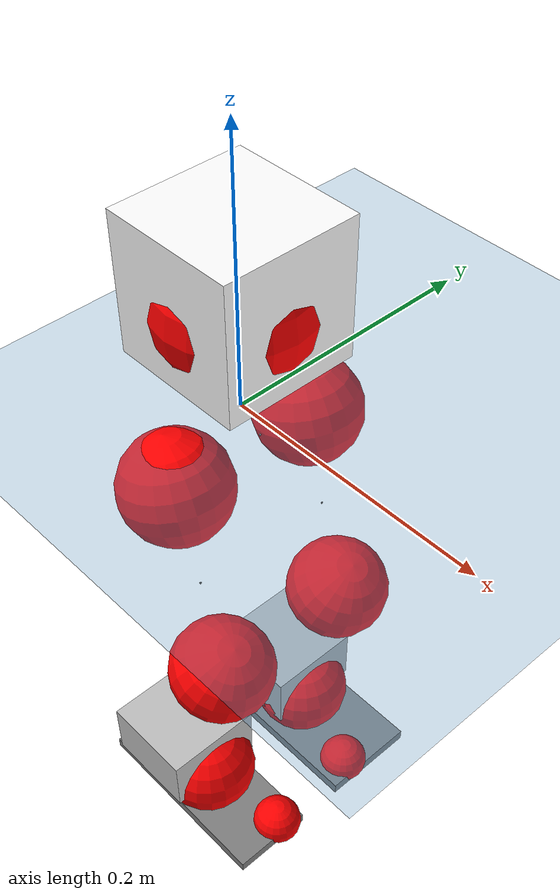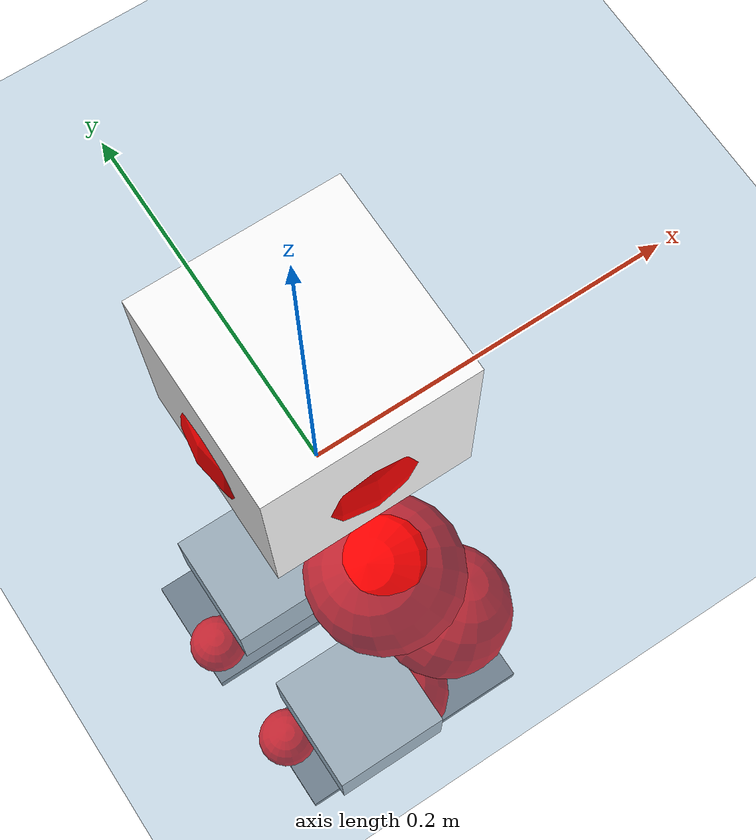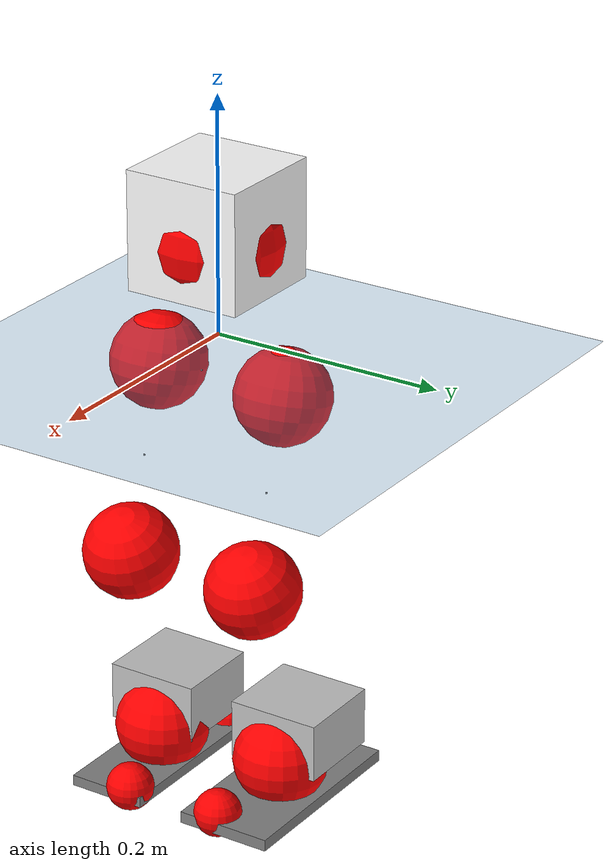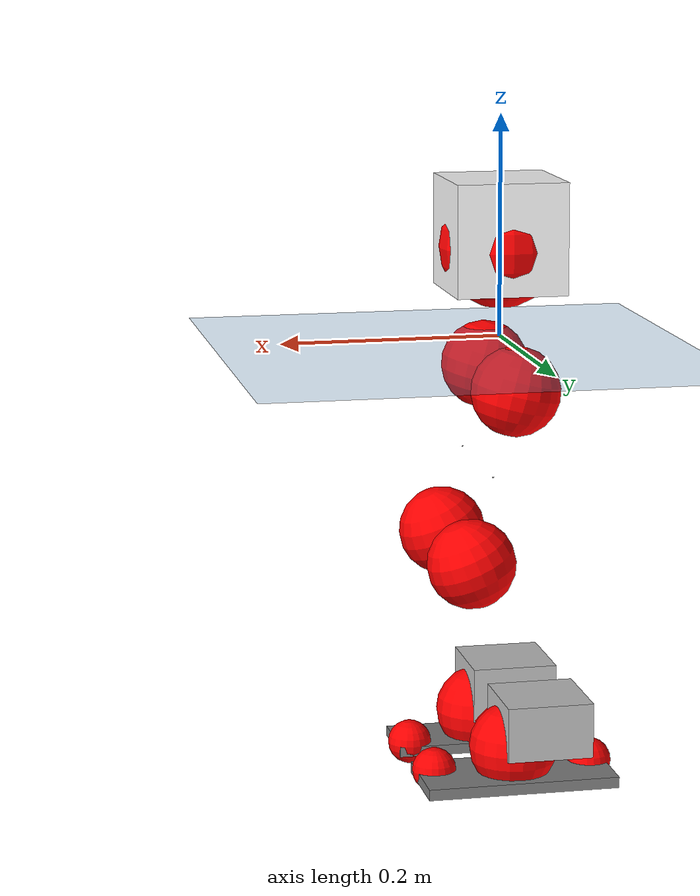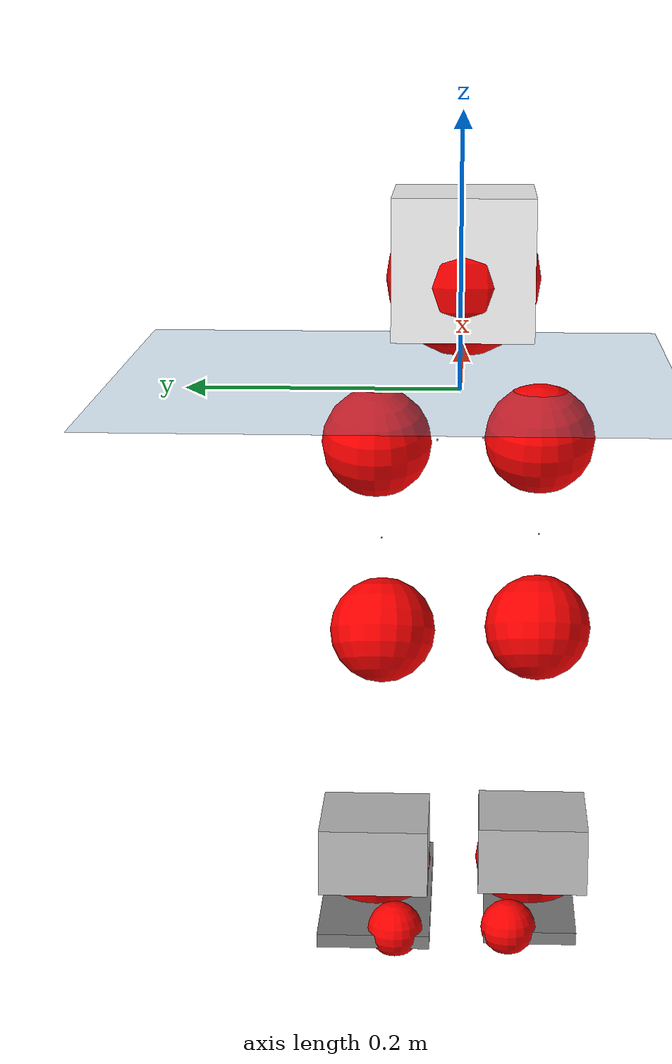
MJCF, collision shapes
<mujoco model="pi_12dof_release_v1">
  <compiler angle="radian" assetdir="assets" balanceinertia="true" inertiafromgeom="false"/>

  <option timestep="0.005" density="1.2" viscosity="2e-05"/>

  <size nkey="1"/>

  <visual>
    <quality shadowsize="8192"/>
    <map shadowclip="0.5"/>
  </visual>

  <default>
    <default class="/">
      <joint armature="0.01" damping="0.01" frictionloss="0.01"/>
      <geom contype="0" conaffinity="0" group="1" solref="-1000 -80"/>
      <site size="0.01 0.005 0.005" group="5"/>
      <general forcelimited="true" biastype="affine" gainprm="20" biasprm="0 -20 -0.5"/>
      <default class="foot">
        <geom size="0.0845 0.036 0.005" type="box" condim="6" group="4" priority="1" friction="0.9 0.2 0.2" solimp="0.015 1 0.005"/>
      </default>
      <default class="reward_collision_sphere">
        <geom group="5" rgba="1 0 0 1"/>
      </default>
    </default>
  </default>

  <asset>
    <texture type="skybox" colorspace="auto" name="//unnamed_texture_0" builtin="gradient" rgb1="0.95 0.95 0.95" rgb2="0.95 0.95 0.95" width="100" height="600"/>
    <texture type="2d" colorspace="auto" name="texplane" builtin="checker" rgb1="0.345 0.575 0.748" rgb2="0.345 0.575 0.748" markrgb="1 1 1" width="512" height="512"/>
    <material name="MatPlane" class="/" texture="texplane" texuniform="true" texrepeat="2 2" specular="0.9"/>
    <mesh name="baselink_1" class="/" file="baselink_1.STL"/>
    <mesh name="r_hip_pitch_link" class="/" file="r_hip_pitch_link.STL"/>
    <mesh name="r_hip_roll_link" class="/" file="r_hip_roll_link.STL"/>
    <mesh name="r_thigh_link" class="/" file="r_thigh_link.STL"/>
    <mesh name="r_calf_link" class="/" file="r_calf_link.STL"/>
    <mesh name="r_ankle_pitch_link" class="/" file="r_ankle_pitch_link.STL"/>
    <mesh name="r_ankle_roll_link" class="/" file="r_ankle_roll_link.STL"/>
    <mesh name="l_hip_pitch_link" class="/" file="l_hip_pitch_link.STL"/>
    <mesh name="l_hip_roll_link" class="/" file="l_hip_roll_link.STL"/>
    <mesh name="l_thigh_link" class="/" file="l_thigh_link.STL"/>
    <mesh name="l_calf_link" class="/" file="l_calf_link.STL"/>
    <mesh name="l_ankle_pitch_link" class="/" file="l_ankle_pitch_link.STL"/>
    <mesh name="l_ankle_roll_link" class="/" file="l_ankle_roll_link.STL"/>
  </asset>

  <worldbody>
    <geom name="floor" class="/" size="100 100 0.125" type="plane" group="0" material="MatPlane"/>
    <light name="toplight_shadow" class="/" pos="0 0 5" dir="0.0990148 0.0990148 -0.990148" type="directional" ambient="0.04 0.04 0.04" diffuse="0.55 0.55 0.55" specular="0.12 0.12 0.12"/>
    <light name="toplight_fill" class="/" pos="0 0 5" dir="0.0990148 0.0990148 -0.990148" type="directional" castshadow="false" ambient="0.04 0.04 0.04" diffuse="0.3 0.3 0.3" specular="0.08 0.08 0.08"/>
    <body name="trunk" pos="-9.71657e-05 -0.0013161 0.000548355" quat="1 -2.77673e-05 -2.50079e-05 -6.84236e-06">
      <inertial pos="0.00138296 -0.002339 0.0464692" quat="0.688861 0.00815784 0.0185828 0.724609" mass="2.17924" diaginertia="0.0140984 0.00274523 0.00850221"/>
      <joint name="//unnamed_joint_0" type="free"/>
      <geom name="//unnamed_geom_1" class="/" type="mesh" density="0" rgba="1 1 1 1" mesh="baselink_1"/>
      <geom name="//unnamed_geom_2" class="/" size="0.0502814 0.0502814 0.0502814" pos="0 0 0.0923438" type="box" rgba="1 1 1 1"/>
      <geom name="//unnamed_geom_3" class="reward_collision_sphere" size="0.0553095" pos="0 0 0.0808009"/>
      <site name="imu" class="/" pos="0.00576693 -0.000487371 -0.00652905" size="0.0100563"/>
      <camera name="track" class="/" pos="0 -1.57636 0" quat="0.707107 0.707107 0 0" mode="trackcom"/>
      <camera name="ego_camera" class="/" pos="0.0805803 0 0.207774" quat="-0.5 -0.5 0.5 0.5"/>
      <body name="r_hip_pitch_link" pos="0.000192261 -0.0153798 -0.0357751" quat="0.992158 4.59933e-05 -0.124988 -0.000595638">
        <inertial pos="0.000686272 -0.0441267 -2.73841e-05" quat="-0.0183213 0.706573 -0.0304959 0.706745" mass="0.371096" diaginertia="0.000155221 2.92779e-05 0.000171392"/>
        <joint name="r_hip_pitch_joint" class="/" pos="0 0 0" axis="-0.00640234 -0.999973 0.00355097" stiffness="0.00070006" range="-1.74663 1.25228" armature="0.00993811" damping="0.0146333" frictionloss="0.0104543"/>
        <geom name="//unnamed_geom_4" class="/" type="mesh" density="0" rgba="0.75294 0.75294 0.75294 1" mesh="r_hip_pitch_link"/>
        <geom name="//unnamed_geom_5" class="/" size="0.000502814 0.000502814 0.000502814" type="box" rgba="0.75294 0.75294 0.75294 1"/>
        <body name="r_hip_roll_link" pos="0.000490451 -0.0413882 -0.000197171" quat="1 -0.000185958 -0.000230249 -0.000422607">
          <inertial pos="8.89475e-05 -7.44241e-05 -0.0704199" quat="0.701382 -0.0845881 -0.0780358 0.703433" mass="0.395637" diaginertia="0.000483565 8.48285e-05 0.00026762"/>
          <joint name="r_hip_roll_joint" class="/" pos="0 0 0" axis="-0.999999 0.000559803 0.00141129" stiffness="0.00270251" range="-0.114816 0.528843" armature="0.00972293" damping="0.0067678" frictionloss="0.00981242"/>
          <geom name="//unnamed_geom_6" class="/" type="mesh" density="0" rgba="0.75294 0.75294 0.75294 1" mesh="r_hip_roll_link"/>
          <geom name="//unnamed_geom_7" class="/" size="0.000502814 0.000502814 0.000502814" type="box" rgba="0.75294 0.75294 0.75294 1"/>
          <geom name="//unnamed_geom_8" class="reward_collision_sphere" size="0.0402251"/>
          <body name="r_thigh_link" pos="0.000206019 -0.00154485 -0.07978" quat="1 6.4266e-07 -4.93223e-06 -1.59215e-05">
            <inertial pos="0.00129105 0.000798713 -0.0572648" quat="0.737678 0.675153 -0.000307773 8.50559e-05" mass="0.11416" diaginertia="0.000176247 2.96506e-05 0.000115147"/>
            <joint name="r_thigh_joint" class="/" pos="0 0 0" axis="-0.000525716 -0.00361291 -0.999993" range="-0.317548 0.597786" armature="0.0104788" damping="0.00703863" frictionloss="0.00990372"/>
            <geom name="//unnamed_geom_9" class="/" type="mesh" density="0" rgba="0.75294 0.75294 0.75294 1" mesh="r_thigh_link"/>
            <geom name="//unnamed_geom_10" class="/" size="0.000502814 0.000502814 0.000502814" type="box" rgba="0.75294 0.75294 0.75294 1"/>
            <body name="r_calf_link" pos="-0.000881181 -0.00081594 -0.0810614" quat="0.947664 -6.27823e-05 0.319269 -2.31445e-05">
              <inertial pos="0.000549453 -0.00154353 -0.0813056" quat="0.999983 -0.00355773 -0.00193343 0.00428687" mass="0.812877" diaginertia="0.00514057 0.00103754 0.000366792"/>
              <joint name="r_calf_joint" class="/" pos="0 0 0" axis="0.000496811 -1 0.000339048" range="-1.59976 0.641098" armature="0.0104692" damping="0.0102619" frictionloss="0.00980295"/>
              <geom name="//unnamed_geom_11" class="/" type="mesh" density="0" rgba="0.75294 0.75294 0.75294 1" mesh="r_calf_link"/>
              <geom name="//unnamed_geom_12" class="/" size="0.000502814 0.000502814 0.000502814" type="box" rgba="0.75294 0.75294 0.75294 1"/>
              <geom name="//unnamed_geom_13" class="reward_collision_sphere" size="0.0402251"/>
              <body name="r_ankle_pitch_link" pos="0.0027902 0.00293055 -0.162114" quat="0.980051 -0.000396989 -0.198744 0.000137775">
                <inertial pos="0.00549381 0.000373839 -0.000749828" quat="0.00240202 0.70728 -0.00165476 0.706927" mass="0.184638" diaginertia="0.000452778 6.89768e-05 0.000253729"/>
                <joint name="r_ankle_pitch_joint" class="/" pos="0 0 0" axis="0.0107048 -0.999918 -0.00707539" range="-1.30997 0.546865" armature="0.0102066" damping="0.0119779" frictionloss="0.0105676"/>
                <geom name="//unnamed_geom_14" class="/" type="mesh" density="0" rgba="0.75294 0.75294 0.75294 1" mesh="r_ankle_pitch_link"/>
                <geom name="//unnamed_geom_15" class="/" size="0.0392195 0.0402251 0.0251407" type="box" rgba="0.75294 0.75294 0.75294 1"/>
                <body name="r_ankle_roll_link" pos="0.0796387 0.00190663 -0.000679361" quat="1 -0.000125188 0.000740779 -0.000628724">
                  <inertial pos="-0.0265986 -0.000267868 -0.0160574" quat="0.559168 0.430683 0.434104 0.559818" mass="0.530828" diaginertia="0.00160662 0.000314356 0.000572649"/>
                  <joint name="r_ankle_roll_joint" class="/" pos="0 0 0" axis="-1 -8.85317e-05 9.13995e-05" range="-0.199176 0.144201" armature="0.00999636" damping="0.013659" frictionloss="0.0102662"/>
                  <geom name="//unnamed_geom_16" class="/" type="mesh" density="0" rgba="0.75294 0.75294 0.75294 1" mesh="r_ankle_roll_link"/>
                  <geom name="//unnamed_geom_17" class="/" type="mesh" rgba="0.75294 0.75294 0.75294 1" mesh="r_ankle_roll_link"/>
                  <geom name="right_foot" class="foot" size="0.0830724 0.0339032 0.00460206" pos="-0.0547946 0 -0.0507891"/>
                  <geom name="//unnamed_geom_19" class="reward_collision_sphere" size="0.0402251" pos="-0.0537202 0 -0.023086"/>
                  <geom name="//unnamed_geom_20" class="reward_collision_sphere" size="0.0201126" pos="0.0161161 0.0157636 -0.0461719"/>
                  <geom name="//unnamed_geom_21" class="reward_collision_sphere" size="0.0201126" pos="-0.128929 0.0157636 -0.0461719"/>
                  <site name="right_foot" class="foot" pos="-0.0547946 0 -0.0507891" size="0.0100563"/>
                </body>
              </body>
            </body>
          </body>
        </body>
      </body>
      <body name="l_hip_pitch_link" pos="-0.000593844 0.0178387 -0.0375136" quat="0.992255 3.83682e-05 -0.124219 0.000277262">
        <inertial pos="0.000523843 0.0406236 -0.000895434" quat="-0.0421795 0.705477 0.0329155 0.70671" mass="0.387115" diaginertia="0.000182233 3.16039e-05 0.000204328"/>
        <joint name="l_hip_pitch_joint" class="/" pos="0 0 0" axis="0.00187213 0.999998 0.000169908" stiffness="0.00337429" range="-1.24346 1.75637" armature="0.00983267" damping="0" frictionloss="0.0103572"/>
        <geom name="//unnamed_geom_22" class="/" type="mesh" density="0" rgba="0.75294 0.75294 0.75294 1" mesh="l_hip_pitch_link"/>
        <geom name="//unnamed_geom_23" class="/" size="0.000502814 0.000502814 0.000502814" type="box" rgba="0.75294 0.75294 0.75294 1"/>
        <body name="l_hip_roll_link" pos="0.000207269 0.0441792 -0.00223012" quat="1 -0.00016975 5.19917e-05 7.57111e-05">
          <inertial pos="-0.00115541 -0.000564857 -0.0728486" quat="0.699256 -0.0752805 -0.0779529 0.70661" mass="0.402548" diaginertia="0.000476191 8.24575e-05 0.00025824"/>
          <joint name="l_hip_roll_joint" class="/" pos="0 0 0" axis="-0.999991 0.000678978 -0.0042468" range="-0.547017 0.114388" armature="0.0108349" damping="0.00546935" frictionloss="0.00954991"/>
          <geom name="//unnamed_geom_24" class="/" type="mesh" density="0" rgba="0.75294 0.75294 0.75294 1" mesh="l_hip_roll_link"/>
          <geom name="//unnamed_geom_25" class="/" size="0.000502814 0.000502814 0.000502814" type="box" rgba="0.75294 0.75294 0.75294 1"/>
          <geom name="//unnamed_geom_26" class="reward_collision_sphere" size="0.0402251"/>
          <body name="l_thigh_link" pos="-0.000229787 -0.00285559 -0.0797675" quat="1 0.000207307 -0.00026259 7.5266e-05">
            <inertial pos="0.000326453 -0.00157591 -0.0539929" quat="0.675939 0.736955 -2.49933e-05 -0.00162973" mass="0.115096" diaginertia="0.000183532 2.87061e-05 0.00011877"/>
            <joint name="l_thigh_joint" class="/" pos="0 0 0" axis="-0.00037461 -0.000543639 -1" range="-0.596181 0.299601" armature="0.00991484" damping="0.00345591" frictionloss="0.0100302"/>
            <geom name="//unnamed_geom_27" class="/" type="mesh" density="0" rgba="0.75294 0.75294 0.75294 1" mesh="l_thigh_link"/>
            <geom name="//unnamed_geom_28" class="/" size="0.000502814 0.000502814 0.000502814" type="box" rgba="0.75294 0.75294 0.75294 1"/>
            <body name="l_calf_link" pos="-0.000485604 2.46003e-05 -0.0806616" quat="0.947477 0.000419195 0.319823 -0.000542068">
              <inertial pos="-0.000630328 0.00406586 -0.0819164" quat="0.999973 0.00508885 -0.00342387 0.00404216" mass="0.829205" diaginertia="0.00511079 0.00105018 0.00036737"/>
              <joint name="l_calf_joint" class="/" pos="0 0 0" axis="0.00116338 0.999998 0.00173222" range="-0.662638 1.67162" armature="0.00952681" damping="0.00365988" frictionloss="0.0095336"/>
              <geom name="//unnamed_geom_29" class="/" type="mesh" density="0" rgba="0.75294 0.75294 0.75294 1" mesh="l_calf_link"/>
              <geom name="//unnamed_geom_30" class="/" size="0.000502814 0.000502814 0.000502814" type="box" rgba="0.75294 0.75294 0.75294 1"/>
              <geom name="//unnamed_geom_31" class="reward_collision_sphere" size="0.0402251"/>
              <body name="l_ankle_pitch_link" pos="-0.000292833 0.00252409 -0.162026" quat="0.979924 -0.000740689 -0.199367 0.000413995">
                <inertial pos="0.0053925 -0.00273648 -0.000287138" quat="-0.00109177 0.705533 0.000763301 0.708676" mass="0.179301" diaginertia="0.000442951 6.73639e-05 0.00024533"/>
                <joint name="l_ankle_pitch_joint" class="/" pos="0 0 0" axis="-0.00152312 0.999998 -0.00115866" stiffness="0.000793293" range="-0.538953 1.31413" armature="0.0103049" damping="0.0038427" frictionloss="0.0100772"/>
                <geom name="//unnamed_geom_32" class="/" type="mesh" density="0" rgba="0.75294 0.75294 0.75294 1" mesh="l_ankle_pitch_link"/>
                <geom name="//unnamed_geom_33" class="/" size="0.0392195 0.0402251 0.0251407" type="box" rgba="0.75294 0.75294 0.75294 1"/>
                <body name="l_ankle_roll_link" pos="0.0783844 -0.00122691 0.000708862" quat="1 -9.36342e-05 -0.000256971 -0.000177329">
                  <inertial pos="-0.023629 -0.000312677 -0.0156778" quat="0.558933 0.434425 0.431111 0.559475" mass="0.522168" diaginertia="0.00165751 0.000316291 0.000574794"/>
                  <joint name="l_ankle_roll_joint" class="/" pos="0 0 0" axis="-0.999916 0.00462391 0.0121445" range="-0.103925 0.130676" armature="0.011149" damping="0.0210385" frictionloss="0.00913634"/>
                  <geom name="//unnamed_geom_34" class="/" type="mesh" density="0" rgba="0.75294 0.75294 0.75294 1" mesh="l_ankle_roll_link"/>
                  <geom name="//unnamed_geom_35" class="/" type="mesh" rgba="0.75294 0.75294 0.75294 1" mesh="l_ankle_roll_link"/>
                  <geom name="left_foot" class="foot" size="0.0873973 0.0411192 0.00502982" pos="-0.0547946 0 -0.0507891"/>
                  <geom name="//unnamed_geom_37" class="reward_collision_sphere" size="0.0402251" pos="-0.0537202 0 -0.023086"/>
                  <geom name="//unnamed_geom_38" class="reward_collision_sphere" size="0.0201126" pos="0.0161161 -0.0157636 -0.0461719"/>
                  <geom name="//unnamed_geom_39" class="reward_collision_sphere" size="0.0201126" pos="-0.128929 -0.0157636 -0.0461719"/>
                  <site name="left_foot" class="foot" pos="-0.0547946 0 -0.0507891" size="0.0100563"/>
                </body>
              </body>
            </body>
          </body>
        </body>
      </body>
    </body>
  </worldbody>

  <contact>
    <pair class="/" geom1="floor" geom2="right_foot" name="//unnamed_contact_1"/>
    <pair class="/" geom1="floor" geom2="left_foot" name="//unnamed_contact_0"/>
  </contact>

  <actuator>
    <general name="r_hip_pitch_joint" class="/" joint="r_hip_pitch_joint" forcerange="-21.8463 21.8463" gainprm="20.1393" biasprm="0 -20.1393 -0.503856"/>
    <general name="r_hip_roll_joint" class="/" joint="r_hip_roll_joint" forcerange="-21.1426 21.1426" gainprm="20.1393" biasprm="0 -20.1393 -0.503856"/>
    <general name="r_thigh_joint" class="/" joint="r_thigh_joint" forcerange="-21.7223 21.7223" gainprm="20.1393" biasprm="0 -20.1393 -0.503856"/>
    <general name="r_calf_joint" class="/" joint="r_calf_joint" forcerange="-19.5034 19.5034" gainprm="20.1393" biasprm="0 -20.1393 -0.503856"/>
    <general name="r_ankle_pitch_joint" class="/" joint="r_ankle_pitch_joint" forcerange="-22.903 22.903" gainprm="20.1393" biasprm="0 -20.1393 -0.503856"/>
    <general name="r_ankle_roll_joint" class="/" joint="r_ankle_roll_joint" forcerange="-22.9168 22.9168" gainprm="20.1393" biasprm="0 -20.1393 -0.503856"/>
    <general name="l_hip_pitch_joint" class="/" joint="l_hip_pitch_joint" forcerange="-23.1477 23.1477" gainprm="20.1393" biasprm="0 -20.1393 -0.503856"/>
    <general name="l_hip_roll_joint" class="/" joint="l_hip_roll_joint" forcerange="-20.6459 20.6459" gainprm="20.1393" biasprm="0 -20.1393 -0.503856"/>
    <general name="l_thigh_joint" class="/" joint="l_thigh_joint" forcerange="-21.9467 21.9467" gainprm="20.1393" biasprm="0 -20.1393 -0.503856"/>
    <general name="l_calf_joint" class="/" joint="l_calf_joint" forcerange="-22.9278 22.9278" gainprm="20.1393" biasprm="0 -20.1393 -0.503856"/>
    <general name="l_ankle_pitch_joint" class="/" joint="l_ankle_pitch_joint" forcerange="-22.9172 22.9172" gainprm="20.1393" biasprm="0 -20.1393 -0.503856"/>
    <general name="l_ankle_roll_joint" class="/" joint="l_ankle_roll_joint" forcerange="-21.5159 21.5159" gainprm="20.1393" biasprm="0 -20.1393 -0.503856"/>
  </actuator>

  <sensor>
    <gyro site="imu" name="imu_angular_velocity"/>
    <velocimeter site="imu" name="imu_linear_velocity"/>
    <framelinvel objtype="site" objname="left_foot" name="left_foot_global_linear_velocity"/>
    <framelinvel objtype="site" objname="right_foot" name="right_foot_global_linear_velocity"/>
  </sensor>

  <keyframe>
    <key name="home" qpos="0 0 0.291 1 0 0 0 0.4 0 0 -0.8 0.4 0 -0.4 0 0 0.8 -0.4 0"/>
  </keyframe>
</mujoco>
